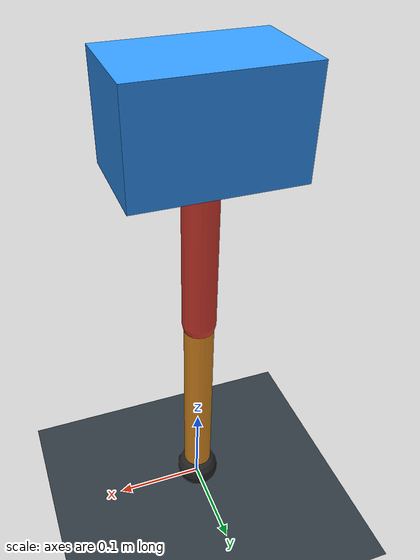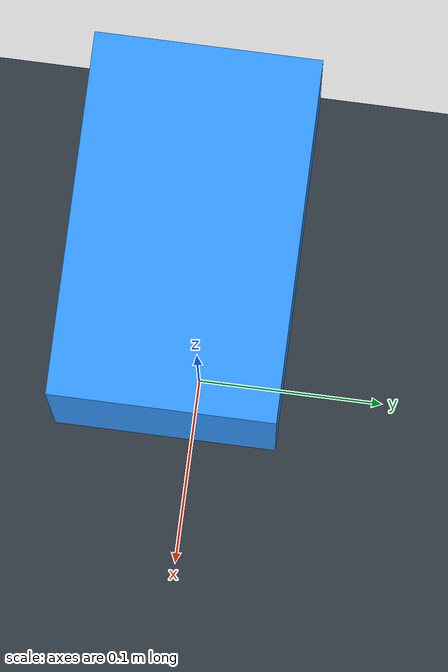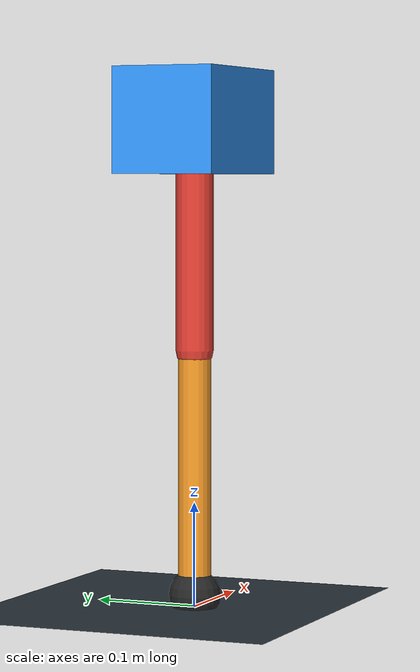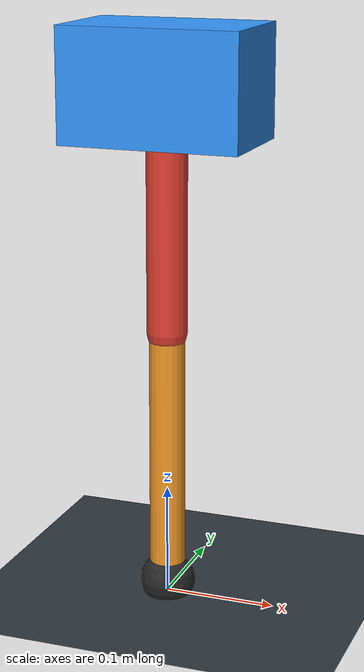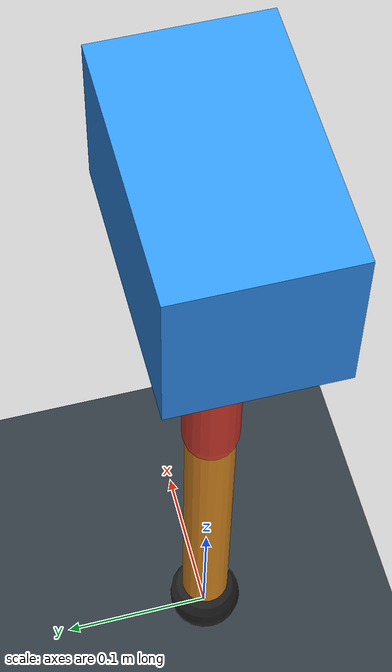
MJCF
<mujoco model="single_axis_two_bar">
  <compiler angle="radian" inertiafromgeom="true"/>
  <option timestep="0.001" integrator="implicitfast" gravity="0 0 -9.81"/>
  <default>
    <joint damping="0.08"/>
    <geom friction="1.2 0.01 0.0001" condim="3"/>
  </default>
  <worldbody>
    <geom name="floor" type="plane" size="5 5 0.1" rgba="0.18 0.22 0.25 1"/>
    <body name="carriage" pos="0 0 0.4647999349706781">
      <joint name="pole_slide" type="slide" axis="0 0 1"/>
      <geom name="payload" type="box" size="0.08 0.05 0.05" mass="2.790242198321717" rgba="0.2 0.6 1 1"/>
      <body name="thigh" pos="0 0 0">
        <joint name="hip" type="hinge" axis="0 1 0"/>
        <geom name="thigh_link" type="capsule" fromto="0 0 0 0 0 -0.2186123494027965" size="0.018" mass="0.15576418765682393" rgba="0.9 0.25 0.2 1"/>
        <body name="shank" pos="0 0 -0.2186123494027965">
          <joint name="knee" type="hinge" axis="0 1 0"/>
          <geom name="shank_link" type="capsule" fromto="0 0 0 0 0 -0.23478964541233555" size="0.016" mass="0.16729072482772722" rgba="0.95 0.6 0.15 1"/>
          <geom name="foot" type="sphere" pos="0 0 -0.23478964541233555" size="0.025" mass="0.03" rgba="0.15 0.15 0.15 1"/>
          <site name="toe" pos="0 0 -0.23478964541233555" size="0.008"/>
        </body>
      </body>
    </body>
  </worldbody>
  <actuator>
    <motor name="hip_motor" joint="hip" ctrlrange="-18.742750497611162 18.742750497611162"/>
    <motor name="knee_motor" joint="knee" ctrlrange="-21.638836388336323 21.638836388336323"/>
  </actuator>
</mujoco>
